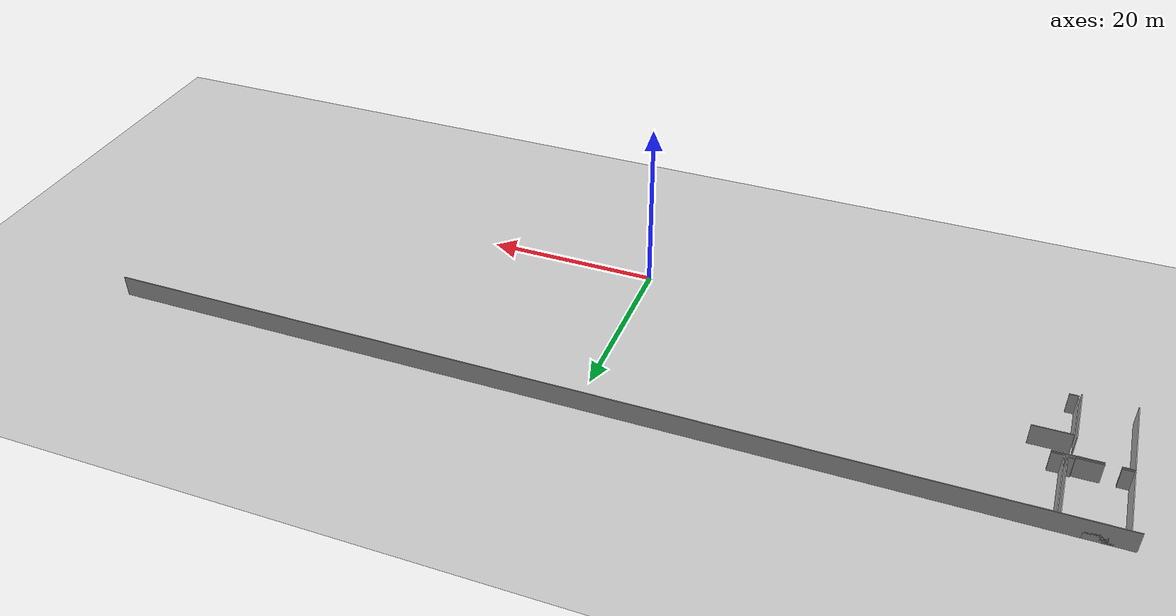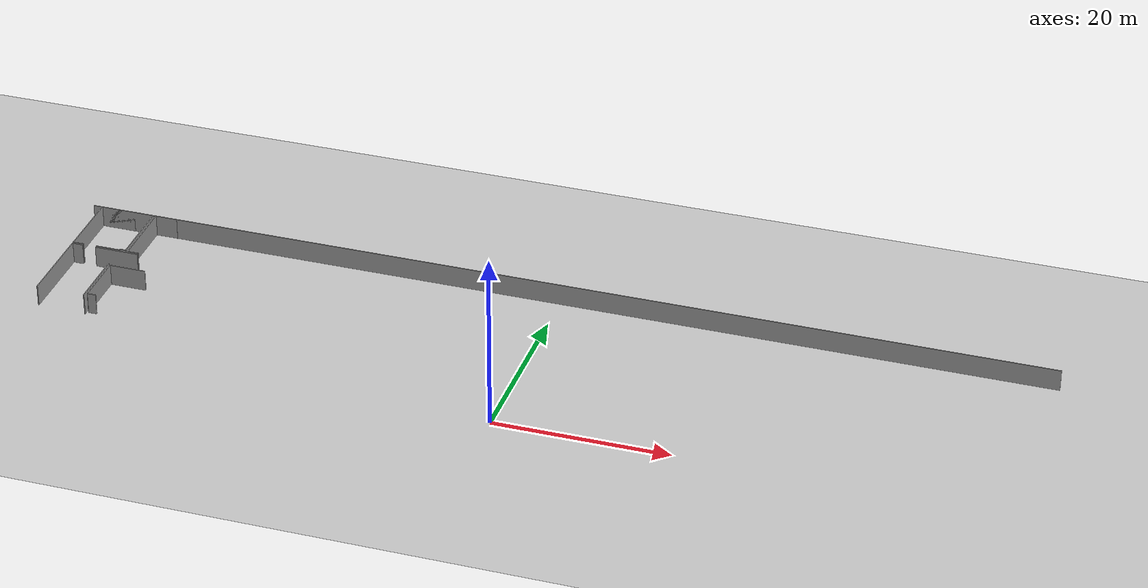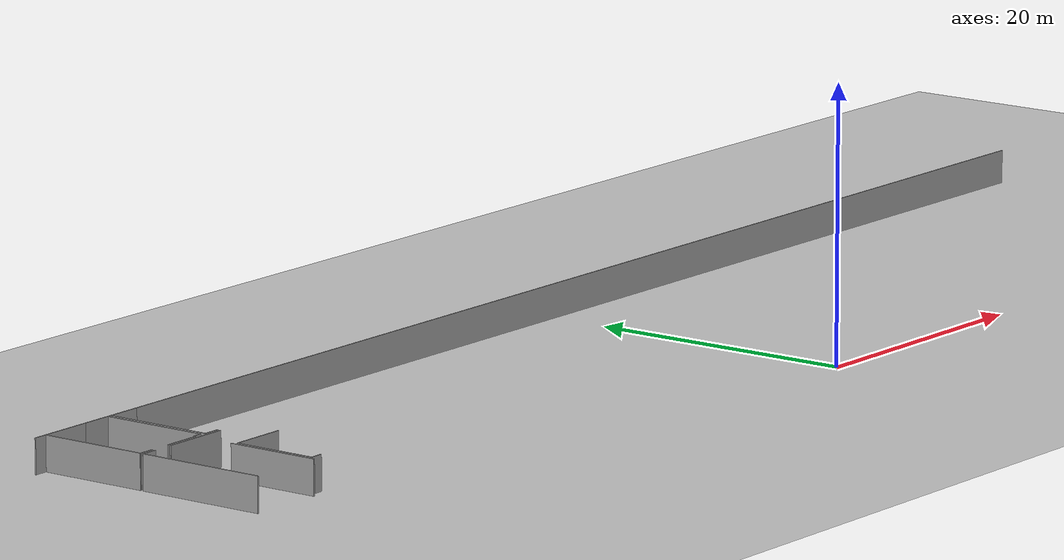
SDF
<sdf version="1.6">
 <world name="default">
  <model name="ground_plane">
   <static>1</static>
   <link name="link">
    <collision name="collision">
     <geometry><plane><normal>0 0 1</normal><size>100 100</size></plane></geometry>
     <surface><friction><ode><mu>100</mu><mu2>50</mu2></ode></friction></surface>
    </collision>
    <visual name="visual">
     <cast_shadows>0</cast_shadows>
     <geometry><plane><normal>0 0 1</normal><size>100 100</size></plane></geometry>
     <material>
      <script><uri>file://media/materials/scripts/gazebo.material</uri><name>Gazebo/Grey</name></script>
     </material>
    </visual>
   </link>
  </model>
  <model name="50057024">
   <static>1</static>
   <link name="Wall_0">
    <collision name="Wall_0_Collision">
     <geometry><box><size>8.09425073079 0.1 2.5</size></box></geometry>
     <pose>4.04712536539 0 1.25 0 0 0</pose>
    </collision>
    <visual name="Wall_0_Visual">
     <pose>4.04712536539 0 1.25 0 0 0</pose>
     <geometry><box><size>8.09425073079 0.1 2.5</size></box></geometry>
     <material>
      <script><uri>file://media/materials/scripts/gazebo.material</uri><name>Gazebo/Grey</name></script>
      <ambient>1 1 1 1</ambient>
     </material>
    </visual>
    <pose>1.05245803928 -8.09425073079 0 0 0 1.57079632679</pose>
   </link>
   <link name="Wall_1">
    <collision name="Wall_1_Collision">
     <geometry><box><size>4.00058336028 0.1 2.5</size></box></geometry>
     <pose>2.00029168014 0 1.25 0 0 0</pose>
    </collision>
    <visual name="Wall_1_Visual">
     <pose>2.00029168014 0 1.25 0 0 0</pose>
     <geometry><box><size>4.00058336028 0.1 2.5</size></box></geometry>
     <material>
      <script><uri>file://media/materials/scripts/gazebo.material</uri><name>Gazebo/Grey</name></script>
      <ambient>1 1 1 1</ambient>
     </material>
    </visual>
    <pose>1.05245803928 -0.0 0 0 0 0.0</pose>
   </link>
   <link name="Wall_2">
    <collision name="Wall_2_Collision">
     <geometry><box><size>7.92000355089 0.1 2.5</size></box></geometry>
     <pose>3.96000177544 0 1.25 0 0 0</pose>
    </collision>
    <visual name="Wall_2_Visual">
     <pose>3.96000177544 0 1.25 0 0 0</pose>
     <geometry><box><size>7.92000355089 0.1 2.5</size></box></geometry>
     <material>
      <script><uri>file://media/materials/scripts/gazebo.material</uri><name>Gazebo/Grey</name></script>
      <ambient>1 1 1 1</ambient>
     </material>
    </visual>
    <pose>7.36606491785 -0.0 0 0 0 -1.57079632679</pose>
   </link>
   <link name="Wall_3">
    <collision name="Wall_3_Collision">
     <geometry><box><size>0.695340092704 0.1 2.5</size></box></geometry>
     <pose>0.347670046352 0 1.25 0 0 0</pose>
    </collision>
    <visual name="Wall_3_Visual">
     <pose>0.347670046352 0 1.25 0 0 0</pose>
     <geometry><box><size>0.695340092704 0.1 2.5</size></box></geometry>
     <material>
      <script><uri>file://media/materials/scripts/gazebo.material</uri><name>Gazebo/Grey</name></script>
      <ambient>1 1 1 1</ambient>
     </material>
    </visual>
    <pose>7.36606491785 -7.92000355089 0 0 0 3.14159265359</pose>
   </link>
   <link name="Wall_4">
    <collision name="Wall_4_Collision">
     <geometry><box><size>0.158521815772 0.1 2.5</size></box></geometry>
     <pose>0.0792609078861 0 1.25 0 0 0</pose>
    </collision>
    <visual name="Wall_4_Visual">
     <pose>0.0792609078861 0 1.25 0 0 0</pose>
     <geometry><box><size>0.158521815772 0.1 2.5</size></box></geometry>
     <material>
      <script><uri>file://media/materials/scripts/gazebo.material</uri><name>Gazebo/Grey</name></script>
      <ambient>1 1 1 1</ambient>
     </material>
    </visual>
    <pose>6.67072482515 -7.92000355089 0 0 0 -1.57079632679</pose>
   </link>
   <link name="Wall_5">
    <collision name="Wall_5_Collision">
     <geometry><box><size>2.81839106698 0.1 2.5</size></box></geometry>
     <pose>1.40919553349 0 1.25 0 0 0</pose>
    </collision>
    <visual name="Wall_5_Visual">
     <pose>1.40919553349 0 1.25 0 0 0</pose>
     <geometry><box><size>2.81839106698 0.1 2.5</size></box></geometry>
     <material>
      <script><uri>file://media/materials/scripts/gazebo.material</uri><name>Gazebo/Grey</name></script>
      <ambient>1 1 1 1</ambient>
     </material>
    </visual>
    <pose>6.67072482515 -8.07852536666 0 0 0 3.14159265359</pose>
   </link>
   <link name="Wall_6">
    <collision name="Wall_6_Collision">
     <geometry><box><size>1.22414306099 0.1 2.5</size></box></geometry>
     <pose>0.612071530496 0 1.25 0 0 0</pose>
    </collision>
    <visual name="Wall_6_Visual">
     <pose>0.612071530496 0 1.25 0 0 0</pose>
     <geometry><box><size>1.22414306099 0.1 2.5</size></box></geometry>
     <material>
      <script><uri>file://media/materials/scripts/gazebo.material</uri><name>Gazebo/Grey</name></script>
      <ambient>1 1 1 1</ambient>
     </material>
    </visual>
    <pose>2.27650009194 -8.07852536666 0 0 0 -3.12874628199</pose>
   </link>
   <link name="Wall_7">
    <collision name="Wall_7_Collision">
     <geometry><box><size>8.08372488222 0.1 2.5</size></box></geometry>
     <pose>4.04186244111 0 1.25 0 0 0</pose>
    </collision>
    <visual name="Wall_7_Visual">
     <pose>4.04186244111 0 1.25 0 0 0</pose>
     <geometry><box><size>8.08372488222 0.1 2.5</size></box></geometry>
     <material>
      <script><uri>file://media/materials/scripts/gazebo.material</uri><name>Gazebo/Grey</name></script>
      <ambient>1 1 1 1</ambient>
     </material>
    </visual>
    <pose>7.69008350929 -8.0947580006 0 0 0 1.57079632679</pose>
   </link>
   <link name="Wall_8">
    <collision name="Wall_8_Collision">
     <geometry><box><size>2.5699556773 0.1 2.5</size></box></geometry>
     <pose>1.28497783865 0 1.25 0 0 0</pose>
    </collision>
    <visual name="Wall_8_Visual">
     <pose>1.28497783865 0 1.25 0 0 0</pose>
     <geometry><box><size>2.5699556773 0.1 2.5</size></box></geometry>
     <material>
      <script><uri>file://media/materials/scripts/gazebo.material</uri><name>Gazebo/Grey</name></script>
      <ambient>1 1 1 1</ambient>
     </material>
    </visual>
    <pose>7.69008350929 -0.0110331183777 0 0 0 0.0</pose>
   </link>
   <link name="Wall_14">
    <collision name="Wall_14_Collision">
     <geometry><box><size>1.24955228471 0.1 2.5</size></box></geometry>
     <pose>0.624776142356 0 1.25 0 0 0</pose>
    </collision>
    <visual name="Wall_14_Visual">
     <pose>0.624776142356 0 1.25 0 0 0</pose>
     <geometry><box><size>1.24955228471 0.1 2.5</size></box></geometry>
     <material>
      <script><uri>file://media/materials/scripts/gazebo.material</uri><name>Gazebo/Grey</name></script>
      <ambient>1 1 1 1</ambient>
     </material>
    </visual>
    <pose>8.93948905248 -8.07560856525 0 0 0 -3.12626701638</pose>
   </link>
   <link name="Wall_40">
    <collision name="Wall_40_Collision">
     <geometry><box><size>9.60439295656 0.1 2.5</size></box></geometry>
     <pose>4.80219647828 0 1.25 0 0 0</pose>
    </collision>
    <visual name="Wall_40_Visual">
     <pose>4.80219647828 0 1.25 0 0 0</pose>
     <geometry><box><size>9.60439295656 0.1 2.5</size></box></geometry>
     <material>
      <script><uri>file://media/materials/scripts/gazebo.material</uri><name>Gazebo/Grey</name></script>
      <ambient>1 1 1 1</ambient>
     </material>
    </visual>
    <pose>1.04307354778 -17.9446695454 0 0 0 1.57079632679</pose>
   </link>
   <link name="Wall_41">
    <collision name="Wall_41_Collision">
     <geometry><box><size>1.2400210517 0.1 2.5</size></box></geometry>
     <pose>0.620010525849 0 1.25 0 0 0</pose>
    </collision>
    <visual name="Wall_41_Visual">
     <pose>0.620010525849 0 1.25 0 0 0</pose>
     <geometry><box><size>1.2400210517 0.1 2.5</size></box></geometry>
     <material>
      <script><uri>file://media/materials/scripts/gazebo.material</uri><name>Gazebo/Grey</name></script>
      <ambient>1 1 1 1</ambient>
     </material>
    </visual>
    <pose>1.04307354778 -8.34027658886 0 0 0 0.0</pose>
   </link>
   <link name="Wall_42">
    <collision name="Wall_42_Collision">
     <geometry><box><size>5.09451070656 0.1 2.5</size></box></geometry>
     <pose>2.54725535328 0 1.25 0 0 0</pose>
    </collision>
    <visual name="Wall_42_Visual">
     <pose>2.54725535328 0 1.25 0 0 0</pose>
     <geometry><box><size>5.09451070656 0.1 2.5</size></box></geometry>
     <material>
      <script><uri>file://media/materials/scripts/gazebo.material</uri><name>Gazebo/Grey</name></script>
      <ambient>1 1 1 1</ambient>
     </material>
    </visual>
    <pose>3.83965201291 -8.34027658886 0 0 0 0.0</pose>
   </link>
   <link name="Wall_52">
    <collision name="Wall_52_Collision">
     <geometry><box><size>6.91877976247 0.1 2.5</size></box></geometry>
     <pose>3.45938988124 0 1.25 0 0 0</pose>
    </collision>
    <visual name="Wall_52_Visual">
     <pose>3.45938988124 0 1.25 0 0 0</pose>
     <geometry><box><size>6.91877976247 0.1 2.5</size></box></geometry>
     <material>
      <script><uri>file://media/materials/scripts/gazebo.material</uri><name>Gazebo/Grey</name></script>
      <ambient>1 1 1 1</ambient>
     </material>
    </visual>
    <pose>6.67719251523 -11.1050238734 0 0 0 -1.57079632679</pose>
   </link>
   <link name="Wall_54">
    <collision name="Wall_54_Collision">
     <geometry><box><size>6.21240655139 0.1 2.5</size></box></geometry>
     <pose>3.10620327569 0 1.25 0 0 0</pose>
    </collision>
    <visual name="Wall_54_Visual">
     <pose>3.10620327569 0 1.25 0 0 0</pose>
     <geometry><box><size>6.21240655139 0.1 2.5</size></box></geometry>
     <material>
      <script><uri>file://media/materials/scripts/gazebo.material</uri><name>Gazebo/Grey</name></script>
      <ambient>1 1 1 1</ambient>
     </material>
    </visual>
    <pose>6.96544858503 -17.6149441686 0 0 0 1.57079632679</pose>
   </link>
   <link name="Wall_55">
    <collision name="Wall_55_Collision">
     <geometry><box><size>4.20552036371 0.1 2.5</size></box></geometry>
     <pose>2.10276018186 0 1.25 0 0 0</pose>
    </collision>
    <visual name="Wall_55_Visual">
     <pose>2.10276018186 0 1.25 0 0 0</pose>
     <geometry><box><size>4.20552036371 0.1 2.5</size></box></geometry>
     <material>
      <script><uri>file://media/materials/scripts/gazebo.material</uri><name>Gazebo/Grey</name></script>
      <ambient>1 1 1 1</ambient>
     </material>
    </visual>
    <pose>6.96544858503 -11.4025376172 0 0 0 0.0</pose>
   </link>
   <link name="Wall_58">
    <collision name="Wall_58_Collision">
     <geometry><box><size>0.965002396055 0.1 2.5</size></box></geometry>
     <pose>0.482501198028 0 1.25 0 0 0</pose>
    </collision>
    <visual name="Wall_58_Visual">
     <pose>0.482501198028 0 1.25 0 0 0</pose>
     <geometry><box><size>0.965002396055 0.1 2.5</size></box></geometry>
     <material>
      <script><uri>file://media/materials/scripts/gazebo.material</uri><name>Gazebo/Grey</name></script>
      <ambient>1 1 1 1</ambient>
     </material>
    </visual>
    <pose>7.93027576455 -17.596555638 0 0 0 -3.12253607536</pose>
   </link>
   <link name="Wall_212">
    <collision name="Wall_212_Collision">
     <geometry><box><size>112.377383376 0.1 2.5</size></box></geometry>
     <pose>56.1886916878 0 1.25 0 0 0</pose>
    </collision>
    <visual name="Wall_212_Visual">
     <pose>56.1886916878 0 1.25 0 0 0</pose>
     <geometry><box><size>112.377383376 0.1 2.5</size></box></geometry>
     <material>
      <script><uri>file://media/materials/scripts/gazebo.material</uri><name>Gazebo/Grey</name></script>
      <ambient>1 1 1 1</ambient>
     </material>
    </visual>
   </link>
   <pose>-56.15 24.49446315 0 0 0 0</pose>
  </model>
 </world>
</sdf>
